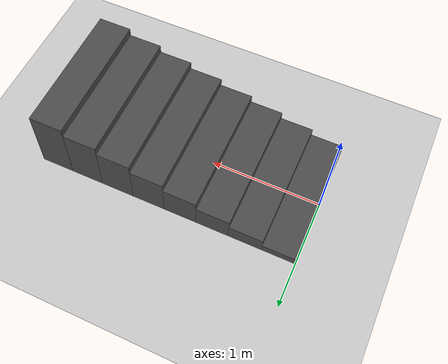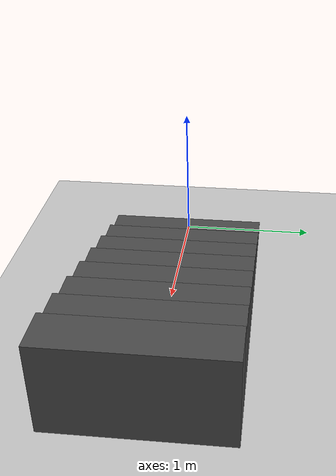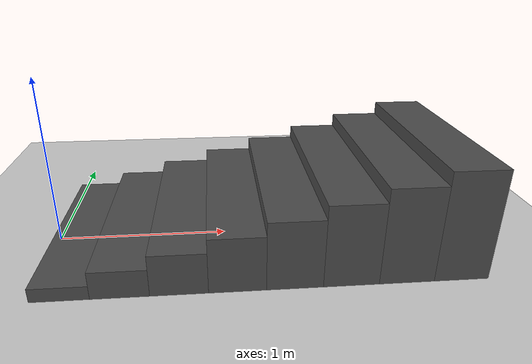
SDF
<?xml version="1.0" ?>
<!-- 由 omni_world.py 自动生成: scene=stairs seed=None -->
<sdf version="1.5">
  <world name="stairs">
    <physics type="ode">
      <type>world</type>
      <max_step_size>0.001</max_step_size>
      <real_time_update_rate>1000</real_time_update_rate>
      <iters>500</iters>
    </physics>
    <include><uri>model://sun</uri></include>
    <include><uri>model://ground_plane</uri></include>
    <model name="stair_0">
      <static>true</static>
      <pose>0.150 0.000 0.040 0.0000 0.0000 0.0000</pose>
      <link name="link">
        <collision name="collision">
          <geometry><box><size>0.300 1.200 0.080</size></box></geometry>
          <surface><friction><ode><mu>1.0</mu><mu2>1.0</mu2></ode></friction></surface>
        </collision>
        <visual name="visual">
          <geometry><box><size>0.300 1.200 0.080</size></box></geometry>
          <material><script><uri>file://media/materials/scripts/gazebo.material</uri>
            <name>Gazebo/DarkGrey</name></script></material>
        </visual>
      </link>
    </model>
    <model name="stair_1">
      <static>true</static>
      <pose>0.450 0.000 0.080 0.0000 0.0000 0.0000</pose>
      <link name="link">
        <collision name="collision">
          <geometry><box><size>0.300 1.200 0.160</size></box></geometry>
          <surface><friction><ode><mu>1.0</mu><mu2>1.0</mu2></ode></friction></surface>
        </collision>
        <visual name="visual">
          <geometry><box><size>0.300 1.200 0.160</size></box></geometry>
          <material><script><uri>file://media/materials/scripts/gazebo.material</uri>
            <name>Gazebo/DarkGrey</name></script></material>
        </visual>
      </link>
    </model>
    <model name="stair_2">
      <static>true</static>
      <pose>0.750 0.000 0.120 0.0000 0.0000 0.0000</pose>
      <link name="link">
        <collision name="collision">
          <geometry><box><size>0.300 1.200 0.240</size></box></geometry>
          <surface><friction><ode><mu>1.0</mu><mu2>1.0</mu2></ode></friction></surface>
        </collision>
        <visual name="visual">
          <geometry><box><size>0.300 1.200 0.240</size></box></geometry>
          <material><script><uri>file://media/materials/scripts/gazebo.material</uri>
            <name>Gazebo/DarkGrey</name></script></material>
        </visual>
      </link>
    </model>
    <model name="stair_3">
      <static>true</static>
      <pose>1.050 0.000 0.160 0.0000 0.0000 0.0000</pose>
      <link name="link">
        <collision name="collision">
          <geometry><box><size>0.300 1.200 0.320</size></box></geometry>
          <surface><friction><ode><mu>1.0</mu><mu2>1.0</mu2></ode></friction></surface>
        </collision>
        <visual name="visual">
          <geometry><box><size>0.300 1.200 0.320</size></box></geometry>
          <material><script><uri>file://media/materials/scripts/gazebo.material</uri>
            <name>Gazebo/DarkGrey</name></script></material>
        </visual>
      </link>
    </model>
    <model name="stair_4">
      <static>true</static>
      <pose>1.350 0.000 0.200 0.0000 0.0000 0.0000</pose>
      <link name="link">
        <collision name="collision">
          <geometry><box><size>0.300 1.200 0.400</size></box></geometry>
          <surface><friction><ode><mu>1.0</mu><mu2>1.0</mu2></ode></friction></surface>
        </collision>
        <visual name="visual">
          <geometry><box><size>0.300 1.200 0.400</size></box></geometry>
          <material><script><uri>file://media/materials/scripts/gazebo.material</uri>
            <name>Gazebo/DarkGrey</name></script></material>
        </visual>
      </link>
    </model>
    <model name="stair_5">
      <static>true</static>
      <pose>1.650 0.000 0.240 0.0000 0.0000 0.0000</pose>
      <link name="link">
        <collision name="collision">
          <geometry><box><size>0.300 1.200 0.480</size></box></geometry>
          <surface><friction><ode><mu>1.0</mu><mu2>1.0</mu2></ode></friction></surface>
        </collision>
        <visual name="visual">
          <geometry><box><size>0.300 1.200 0.480</size></box></geometry>
          <material><script><uri>file://media/materials/scripts/gazebo.material</uri>
            <name>Gazebo/DarkGrey</name></script></material>
        </visual>
      </link>
    </model>
    <model name="stair_6">
      <static>true</static>
      <pose>1.950 0.000 0.280 0.0000 0.0000 0.0000</pose>
      <link name="link">
        <collision name="collision">
          <geometry><box><size>0.300 1.200 0.560</size></box></geometry>
          <surface><friction><ode><mu>1.0</mu><mu2>1.0</mu2></ode></friction></surface>
        </collision>
        <visual name="visual">
          <geometry><box><size>0.300 1.200 0.560</size></box></geometry>
          <material><script><uri>file://media/materials/scripts/gazebo.material</uri>
            <name>Gazebo/DarkGrey</name></script></material>
        </visual>
      </link>
    </model>
    <model name="stair_7">
      <static>true</static>
      <pose>2.250 0.000 0.320 0.0000 0.0000 0.0000</pose>
      <link name="link">
        <collision name="collision">
          <geometry><box><size>0.300 1.200 0.640</size></box></geometry>
          <surface><friction><ode><mu>1.0</mu><mu2>1.0</mu2></ode></friction></surface>
        </collision>
        <visual name="visual">
          <geometry><box><size>0.300 1.200 0.640</size></box></geometry>
          <material><script><uri>file://media/materials/scripts/gazebo.material</uri>
            <name>Gazebo/DarkGrey</name></script></material>
        </visual>
      </link>
    </model>

  </world>
</sdf>
